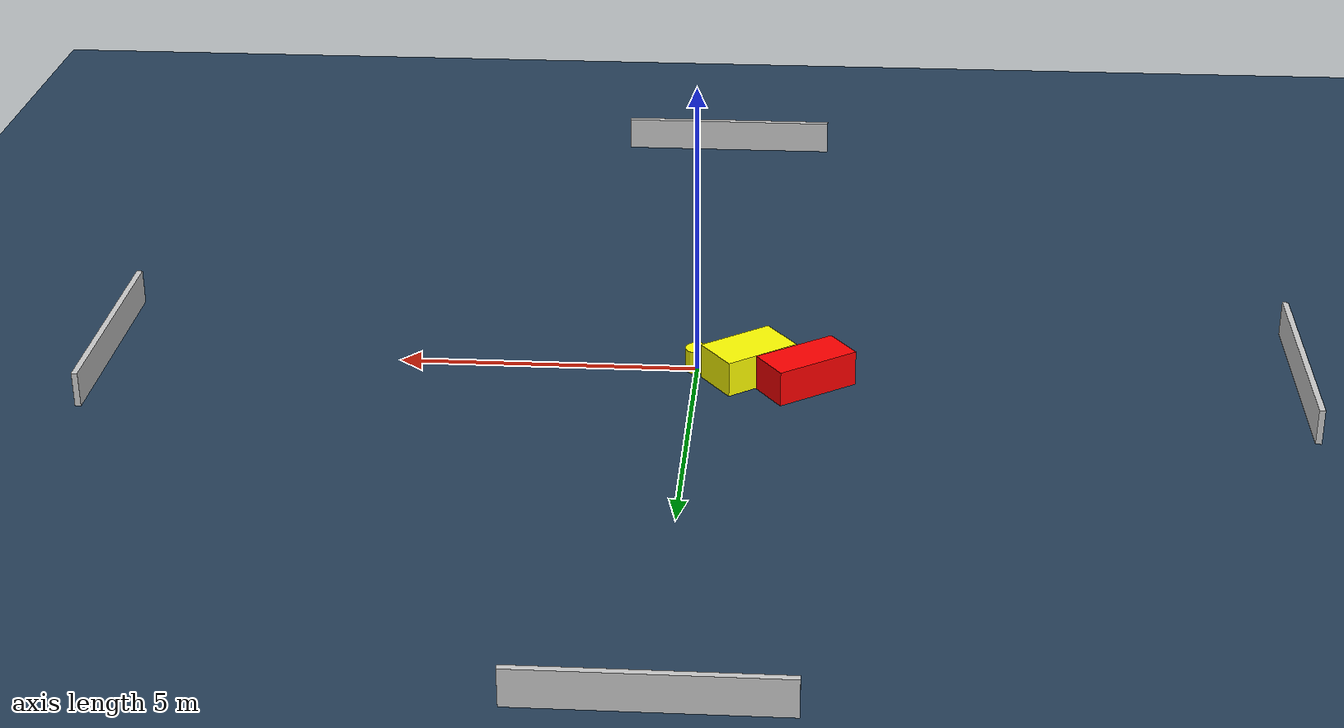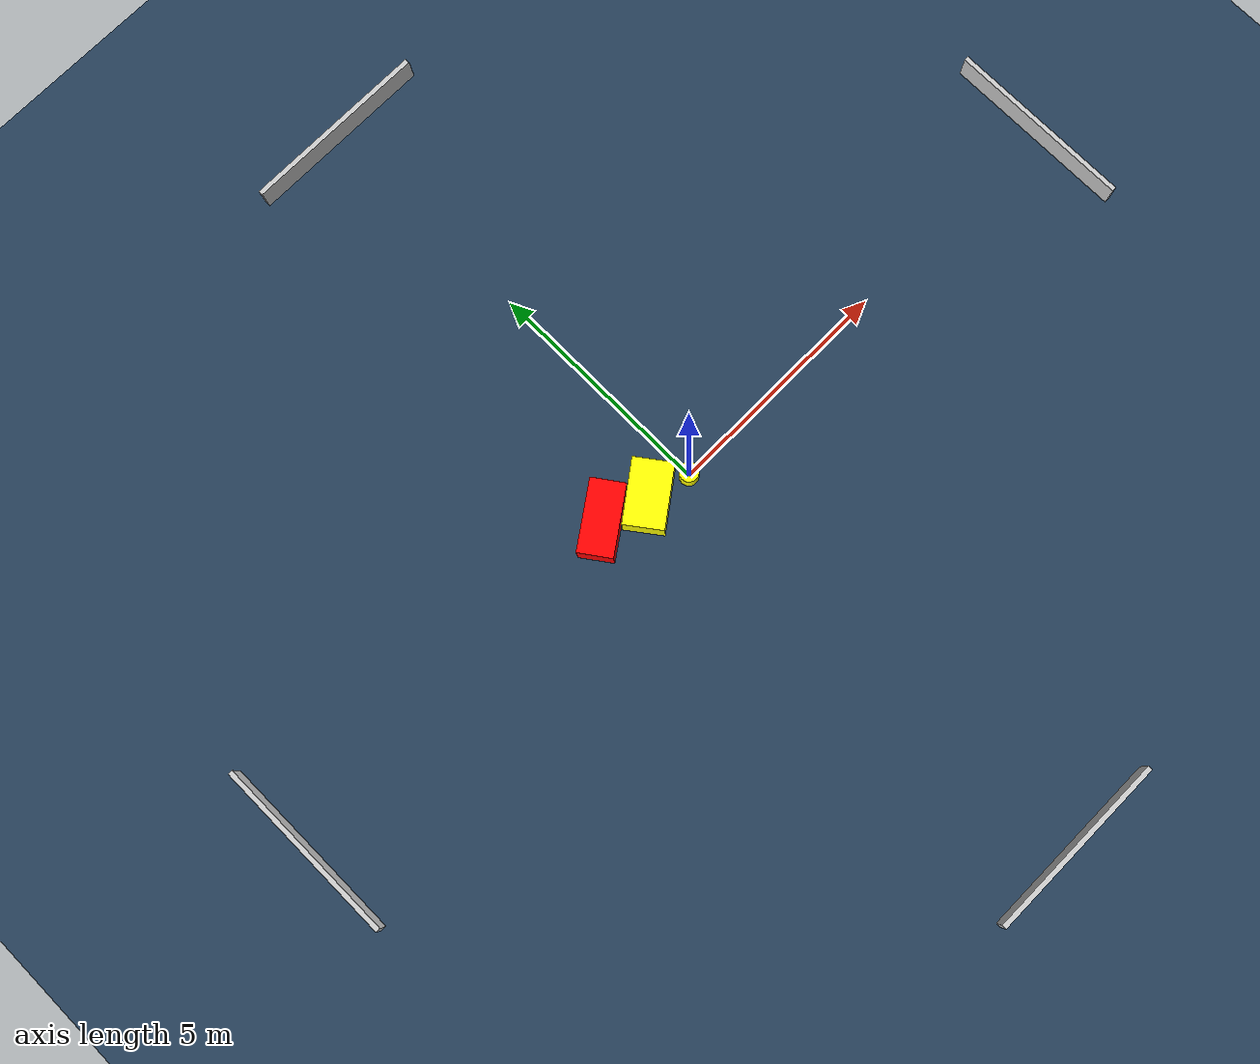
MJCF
<?xml version="1.0" ?>
<mujoco model="generated_environment">
  <option timestep="0.01" integrator="RK4" cone="elliptic"/>
  <default>
    <geom density="1"/>
  </default>
  <asset>
    <texture builtin="gradient" height="3072" name="skybox" rgb1="0.3 0.5 0.7" rgb2="0 0 0" type="skybox" width="512"/>
    <texture builtin="checker" height="300" name="groundplane" rgb1="0.2 0.3 0.4" rgb2="0.1 0.2 0.3" type="2d" width="300"/>
    <material name="groundplane" reflectance="0.2" texrepeat="5 5" texture="groundplane"/>
  </asset>
  <worldbody>
    <light dir="0 0 -1" directional="true" pos="0 0 1.5"/>
    <geom condim="3" friction="0.5 0.005 0.001" material="groundplane" name="floor" pos="0 0 0" size="0 0 0.05" type="plane"/>
    <body name="walls">
      <geom name="wall_1" condim="4" pos="-10.0 0.0 0.3" rgba="0.800000011920929 0.800000011920929 0.800000011920929 1.0" size="0.05 2.0 0.3" type="box"/>
      <geom name="wall_2" condim="4" pos="10.0 0.0 0.3" rgba="0.800000011920929 0.800000011920929 0.800000011920929 1.0" size="0.05 2.0 0.3" type="box"/>
      <geom name="wall_3" condim="4" pos="0.0 -10.0 0.3" rgba="0.800000011920929 0.800000011920929 0.800000011920929 1.0" size="2.0 0.05 0.3" type="box"/>
      <geom name="wall_4" condim="4" pos="0.0 10.0 0.3" rgba="0.800000011920929 0.800000011920929 0.800000011920929 1.0" size="2.0 0.05 0.3" type="box"/>
    </body>
    <body name="robot">
      <joint name="joint_x" type="slide" pos="0 0 0" axis="1 0 0"/>
      <joint name="joint_y" type="slide" pos="0 0 0" axis="0 1 0"/>
      <geom name="robot" type="cylinder" pos="0.0 0.0 0.2" size="0.2 0.2 0.0" mass="5.0" friction="1.0 0.005 0.0001" condim="4" rgba="1.0 1.0 0.0 1.0"/>
    </body>
    <body name="obstacle_1_movable">
      <geom name="obstacle_1_movable" condim="4" pos="-0.8726614009870254 0.22916865696143882 0.3" euler="0 0 36.480384152453226" friction="0.0 0.005 0.001" rgba="1.0 1.0 0.0 1.0" size="0.6725381507886767 0.418397951138782 0.3" type="box" mass="0.1"/>
      <joint type="free"/>
    </body>
    <body name="obstacle_2_static">
      <geom name="obstacle_2_static" condim="4" pos="-1.8334547101587508 0.5274478678315971 0.3" euler="0 0 125.32096142882284" friction="0.0 0.005 0.001" rgba="1.0 0.0 0.0 1.0" size="0.3626360627913231 0.7424823057104679 0.3" type="box"/>
    </body>
  </worldbody>
  <actuator>
    <motor name="actuator_x" joint="joint_x" gear="1" ctrlrange="-1 1"/>
    <motor name="actuator_y" joint="joint_y" gear="1" ctrlrange="-1 1"/>
  </actuator>
</mujoco>
